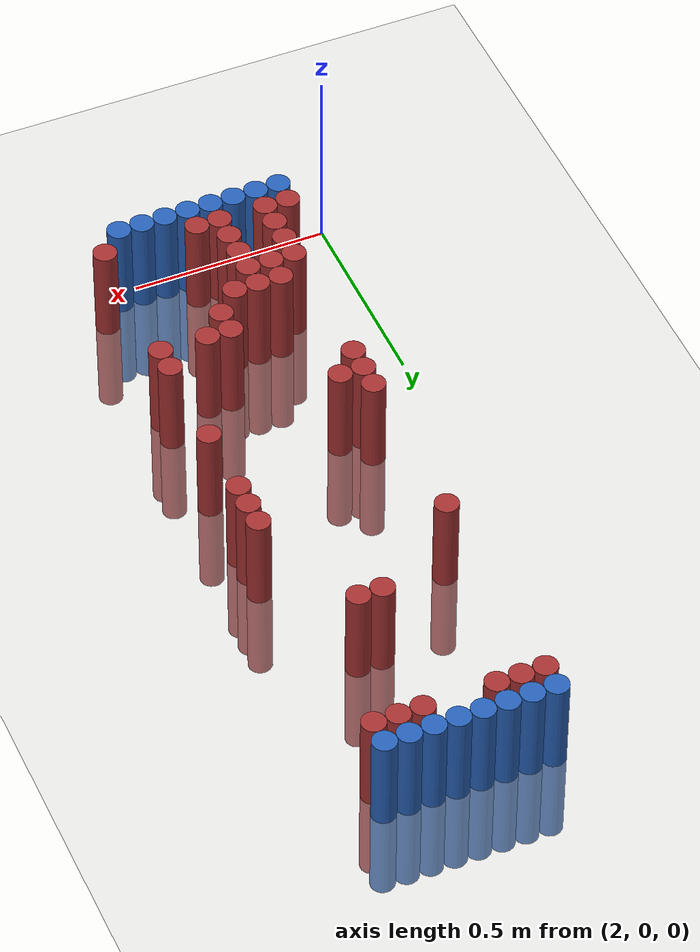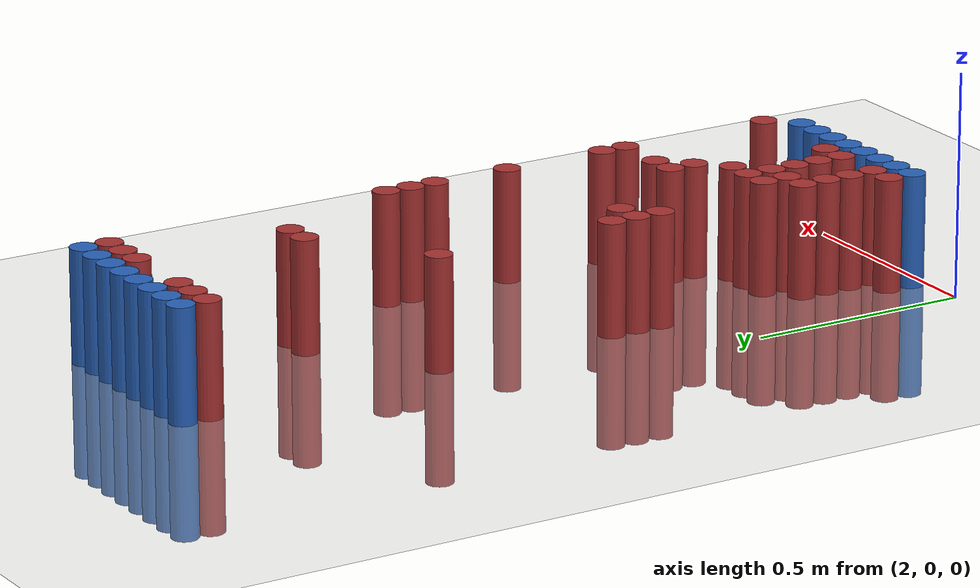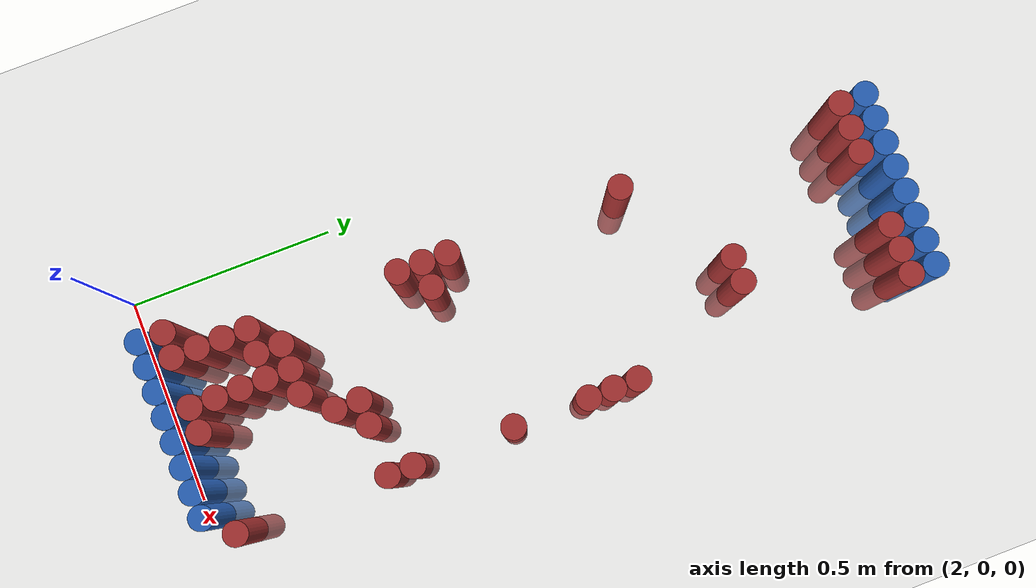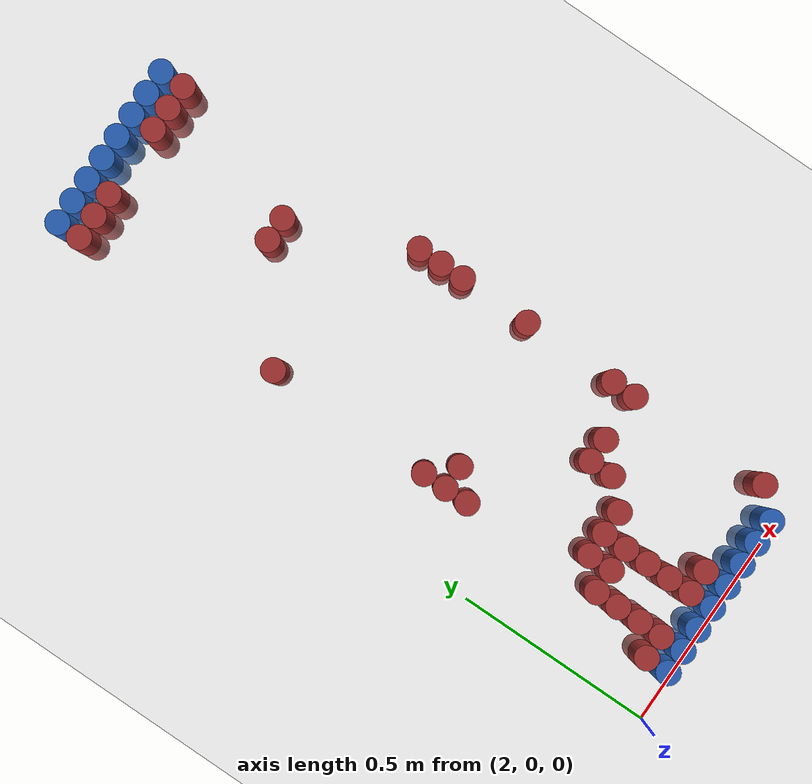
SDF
<sdf version="1.6">
 <world name="default">
  <model name="ground_plane">
   <static>1</static>
   <link name="link">
    <collision name="collision">
     <geometry><plane><normal>0 0 1</normal><size>100 100</size></plane></geometry>
     <surface><friction><ode><mu>100</mu><mu2>50</mu2></ode></friction></surface>
    </collision>
    <visual name="visual">
     <cast_shadows>0</cast_shadows>
     <geometry><plane><normal>0 0 1</normal><size>100 100</size></plane></geometry>
     <material>
      <script><uri>file://media/materials/scripts/gazebo.material</uri><name>Gazebo/Grey</name></script>
     </material>
    </visual>
   </link>
  </model>
  <model name="unit_cylinder_97">
   <static>1</static>
   <pose>2.190000 1.770000 0.000000 0.000000 0.000000 0.000000</pose>
   <link name="link">
    <inertial>
     <mass>1</mass>
     <inertia><ixx>0.145833</ixx><ixy>0</ixy><ixz>0</ixz><iyy>0.145833</iyy><iyz>0</iyz><izz>0.125</izz></inertia>
    </inertial>
    <collision name="collision">
     <geometry><cylinder><radius>0.030000</radius><length>0.5</length></cylinder></geometry>
    </collision>
    <visual name="visual">
     <geometry><cylinder><radius>0.030000</radius><length>0.5</length></cylinder></geometry>
     <material>
      <ambient>0.152000 0.379000 0.720000 1</ambient>
      <diffuse>0.152000 0.379000 0.720000 1</diffuse>
     </material>
     <material>
      <script><name>Gazebo/Grey</name><uri>file://media/materials/scripts/gazebo.material</uri></script>
     </material>
    </visual>
   </link>
  </model>
  <model name="unit_cylinder_98">
   <static>1</static>
   <pose>2.250000 1.770000 0.000000 0.000000 0.000000 0.000000</pose>
   <link name="link">
    <inertial>
     <mass>1</mass>
     <inertia><ixx>0.145833</ixx><ixy>0</ixy><ixz>0</ixz><iyy>0.145833</iyy><iyz>0</iyz><izz>0.125</izz></inertia>
    </inertial>
    <collision name="collision">
     <geometry><cylinder><radius>0.030000</radius><length>0.5</length></cylinder></geometry>
    </collision>
    <visual name="visual">
     <geometry><cylinder><radius>0.030000</radius><length>0.5</length></cylinder></geometry>
     <material>
      <ambient>0.152000 0.379000 0.720000 1</ambient>
      <diffuse>0.152000 0.379000 0.720000 1</diffuse>
     </material>
     <material>
      <script><name>Gazebo/Grey</name><uri>file://media/materials/scripts/gazebo.material</uri></script>
     </material>
    </visual>
   </link>
  </model>
  <model name="unit_cylinder_99">
   <static>1</static>
   <pose>2.310000 1.770000 0.000000 0.000000 0.000000 0.000000</pose>
   <link name="link">
    <inertial>
     <mass>1</mass>
     <inertia><ixx>0.145833</ixx><ixy>0</ixy><ixz>0</ixz><iyy>0.145833</iyy><iyz>0</iyz><izz>0.125</izz></inertia>
    </inertial>
    <collision name="collision">
     <geometry><cylinder><radius>0.030000</radius><length>0.5</length></cylinder></geometry>
    </collision>
    <visual name="visual">
     <geometry><cylinder><radius>0.030000</radius><length>0.5</length></cylinder></geometry>
     <material>
      <ambient>0.152000 0.379000 0.720000 1</ambient>
      <diffuse>0.152000 0.379000 0.720000 1</diffuse>
     </material>
     <material>
      <script><name>Gazebo/Grey</name><uri>file://media/materials/scripts/gazebo.material</uri></script>
     </material>
    </visual>
   </link>
  </model>
  <model name="unit_cylinder_100">
   <static>1</static>
   <pose>2.370000 1.770000 0.000000 0.000000 0.000000 0.000000</pose>
   <link name="link">
    <inertial>
     <mass>1</mass>
     <inertia><ixx>0.145833</ixx><ixy>0</ixy><ixz>0</ixz><iyy>0.145833</iyy><iyz>0</iyz><izz>0.125</izz></inertia>
    </inertial>
    <collision name="collision">
     <geometry><cylinder><radius>0.030000</radius><length>0.5</length></cylinder></geometry>
    </collision>
    <visual name="visual">
     <geometry><cylinder><radius>0.030000</radius><length>0.5</length></cylinder></geometry>
     <material>
      <ambient>0.152000 0.379000 0.720000 1</ambient>
      <diffuse>0.152000 0.379000 0.720000 1</diffuse>
     </material>
     <material>
      <script><name>Gazebo/Grey</name><uri>file://media/materials/scripts/gazebo.material</uri></script>
     </material>
    </visual>
   </link>
  </model>
  <model name="unit_cylinder_101">
   <static>1</static>
   <pose>2.430000 1.770000 0.000000 0.000000 0.000000 0.000000</pose>
   <link name="link">
    <inertial>
     <mass>1</mass>
     <inertia><ixx>0.145833</ixx><ixy>0</ixy><ixz>0</ixz><iyy>0.145833</iyy><iyz>0</iyz><izz>0.125</izz></inertia>
    </inertial>
    <collision name="collision">
     <geometry><cylinder><radius>0.030000</radius><length>0.5</length></cylinder></geometry>
    </collision>
    <visual name="visual">
     <geometry><cylinder><radius>0.030000</radius><length>0.5</length></cylinder></geometry>
     <material>
      <ambient>0.152000 0.379000 0.720000 1</ambient>
      <diffuse>0.152000 0.379000 0.720000 1</diffuse>
     </material>
     <material>
      <script><name>Gazebo/Grey</name><uri>file://media/materials/scripts/gazebo.material</uri></script>
     </material>
    </visual>
   </link>
  </model>
  <model name="unit_cylinder_102">
   <static>1</static>
   <pose>2.490000 1.770000 0.000000 0.000000 0.000000 0.000000</pose>
   <link name="link">
    <inertial>
     <mass>1</mass>
     <inertia><ixx>0.145833</ixx><ixy>0</ixy><ixz>0</ixz><iyy>0.145833</iyy><iyz>0</iyz><izz>0.125</izz></inertia>
    </inertial>
    <collision name="collision">
     <geometry><cylinder><radius>0.030000</radius><length>0.5</length></cylinder></geometry>
    </collision>
    <visual name="visual">
     <geometry><cylinder><radius>0.030000</radius><length>0.5</length></cylinder></geometry>
     <material>
      <ambient>0.152000 0.379000 0.720000 1</ambient>
      <diffuse>0.152000 0.379000 0.720000 1</diffuse>
     </material>
     <material>
      <script><name>Gazebo/Grey</name><uri>file://media/materials/scripts/gazebo.material</uri></script>
     </material>
    </visual>
   </link>
  </model>
  <model name="unit_cylinder_103">
   <static>1</static>
   <pose>2.550000 1.770000 0.000000 0.000000 0.000000 0.000000</pose>
   <link name="link">
    <inertial>
     <mass>1</mass>
     <inertia><ixx>0.145833</ixx><ixy>0</ixy><ixz>0</ixz><iyy>0.145833</iyy><iyz>0</iyz><izz>0.125</izz></inertia>
    </inertial>
    <collision name="collision">
     <geometry><cylinder><radius>0.030000</radius><length>0.5</length></cylinder></geometry>
    </collision>
    <visual name="visual">
     <geometry><cylinder><radius>0.030000</radius><length>0.5</length></cylinder></geometry>
     <material>
      <ambient>0.152000 0.379000 0.720000 1</ambient>
      <diffuse>0.152000 0.379000 0.720000 1</diffuse>
     </material>
     <material>
      <script><name>Gazebo/Grey</name><uri>file://media/materials/scripts/gazebo.material</uri></script>
     </material>
    </visual>
   </link>
  </model>
  <model name="unit_cylinder_104">
   <static>1</static>
   <pose>2.610000 1.770000 0.000000 0.000000 0.000000 0.000000</pose>
   <link name="link">
    <inertial>
     <mass>1</mass>
     <inertia><ixx>0.145833</ixx><ixy>0</ixy><ixz>0</ixz><iyy>0.145833</iyy><iyz>0</iyz><izz>0.125</izz></inertia>
    </inertial>
    <collision name="collision">
     <geometry><cylinder><radius>0.030000</radius><length>0.5</length></cylinder></geometry>
    </collision>
    <visual name="visual">
     <geometry><cylinder><radius>0.030000</radius><length>0.5</length></cylinder></geometry>
     <material>
      <ambient>0.152000 0.379000 0.720000 1</ambient>
      <diffuse>0.152000 0.379000 0.720000 1</diffuse>
     </material>
     <material>
      <script><name>Gazebo/Grey</name><uri>file://media/materials/scripts/gazebo.material</uri></script>
     </material>
    </visual>
   </link>
  </model>
  <model name="unit_cylinder_126">
   <static>1</static>
   <pose>2.190000 1.710000 0.000000 0.000000 0.000000 0.000000</pose>
   <link name="link">
    <inertial>
     <mass>1</mass>
     <inertia><ixx>0.145833</ixx><ixy>0</ixy><ixz>0</ixz><iyy>0.145833</iyy><iyz>0</iyz><izz>0.125</izz></inertia>
    </inertial>
    <collision name="collision">
     <geometry><cylinder><radius>0.030000</radius><length>0.5</length></cylinder></geometry>
    </collision>
    <visual name="visual">
     <geometry><cylinder><radius>0.030000</radius><length>0.5</length></cylinder></geometry>
     <material>
      <ambient>0.648000 0.192000 0.192000 1</ambient>
      <diffuse>0.648000 0.192000 0.192000 1</diffuse>
     </material>
     <material>
      <script><name>Gazebo/Grey</name><uri>file://media/materials/scripts/gazebo.material</uri></script>
     </material>
    </visual>
   </link>
  </model>
  <model name="unit_cylinder_127">
   <static>1</static>
   <pose>2.250000 1.710000 0.000000 0.000000 0.000000 0.000000</pose>
   <link name="link">
    <inertial>
     <mass>1</mass>
     <inertia><ixx>0.145833</ixx><ixy>0</ixy><ixz>0</ixz><iyy>0.145833</iyy><iyz>0</iyz><izz>0.125</izz></inertia>
    </inertial>
    <collision name="collision">
     <geometry><cylinder><radius>0.030000</radius><length>0.5</length></cylinder></geometry>
    </collision>
    <visual name="visual">
     <geometry><cylinder><radius>0.030000</radius><length>0.5</length></cylinder></geometry>
     <material>
      <ambient>0.648000 0.192000 0.192000 1</ambient>
      <diffuse>0.648000 0.192000 0.192000 1</diffuse>
     </material>
     <material>
      <script><name>Gazebo/Grey</name><uri>file://media/materials/scripts/gazebo.material</uri></script>
     </material>
    </visual>
   </link>
  </model>
  <model name="unit_cylinder_128">
   <static>1</static>
   <pose>2.310000 1.710000 0.000000 0.000000 0.000000 0.000000</pose>
   <link name="link">
    <inertial>
     <mass>1</mass>
     <inertia><ixx>0.145833</ixx><ixy>0</ixy><ixz>0</ixz><iyy>0.145833</iyy><iyz>0</iyz><izz>0.125</izz></inertia>
    </inertial>
    <collision name="collision">
     <geometry><cylinder><radius>0.030000</radius><length>0.5</length></cylinder></geometry>
    </collision>
    <visual name="visual">
     <geometry><cylinder><radius>0.030000</radius><length>0.5</length></cylinder></geometry>
     <material>
      <ambient>0.648000 0.192000 0.192000 1</ambient>
      <diffuse>0.648000 0.192000 0.192000 1</diffuse>
     </material>
     <material>
      <script><name>Gazebo/Grey</name><uri>file://media/materials/scripts/gazebo.material</uri></script>
     </material>
    </visual>
   </link>
  </model>
  <model name="unit_cylinder_129">
   <static>1</static>
   <pose>2.490000 1.710000 0.000000 0.000000 0.000000 0.000000</pose>
   <link name="link">
    <inertial>
     <mass>1</mass>
     <inertia><ixx>0.145833</ixx><ixy>0</ixy><ixz>0</ixz><iyy>0.145833</iyy><iyz>0</iyz><izz>0.125</izz></inertia>
    </inertial>
    <collision name="collision">
     <geometry><cylinder><radius>0.030000</radius><length>0.5</length></cylinder></geometry>
    </collision>
    <visual name="visual">
     <geometry><cylinder><radius>0.030000</radius><length>0.5</length></cylinder></geometry>
     <material>
      <ambient>0.648000 0.192000 0.192000 1</ambient>
      <diffuse>0.648000 0.192000 0.192000 1</diffuse>
     </material>
     <material>
      <script><name>Gazebo/Grey</name><uri>file://media/materials/scripts/gazebo.material</uri></script>
     </material>
    </visual>
   </link>
  </model>
  <model name="unit_cylinder_130">
   <static>1</static>
   <pose>2.550000 1.710000 0.000000 0.000000 0.000000 0.000000</pose>
   <link name="link">
    <inertial>
     <mass>1</mass>
     <inertia><ixx>0.145833</ixx><ixy>0</ixy><ixz>0</ixz><iyy>0.145833</iyy><iyz>0</iyz><izz>0.125</izz></inertia>
    </inertial>
    <collision name="collision">
     <geometry><cylinder><radius>0.030000</radius><length>0.5</length></cylinder></geometry>
    </collision>
    <visual name="visual">
     <geometry><cylinder><radius>0.030000</radius><length>0.5</length></cylinder></geometry>
     <material>
      <ambient>0.648000 0.192000 0.192000 1</ambient>
      <diffuse>0.648000 0.192000 0.192000 1</diffuse>
     </material>
     <material>
      <script><name>Gazebo/Grey</name><uri>file://media/materials/scripts/gazebo.material</uri></script>
     </material>
    </visual>
   </link>
  </model>
  <model name="unit_cylinder_131">
   <static>1</static>
   <pose>2.610000 1.710000 0.000000 0.000000 0.000000 0.000000</pose>
   <link name="link">
    <inertial>
     <mass>1</mass>
     <inertia><ixx>0.145833</ixx><ixy>0</ixy><ixz>0</ixz><iyy>0.145833</iyy><iyz>0</iyz><izz>0.125</izz></inertia>
    </inertial>
    <collision name="collision">
     <geometry><cylinder><radius>0.030000</radius><length>0.5</length></cylinder></geometry>
    </collision>
    <visual name="visual">
     <geometry><cylinder><radius>0.030000</radius><length>0.5</length></cylinder></geometry>
     <material>
      <ambient>0.648000 0.192000 0.192000 1</ambient>
      <diffuse>0.648000 0.192000 0.192000 1</diffuse>
     </material>
     <material>
      <script><name>Gazebo/Grey</name><uri>file://media/materials/scripts/gazebo.material</uri></script>
     </material>
    </visual>
   </link>
  </model>
  <model name="unit_cylinder_149">
   <static>1</static>
   <pose>2.430000 1.350000 0.000000 0.000000 0.000000 0.000000</pose>
   <link name="link">
    <inertial>
     <mass>1</mass>
     <inertia><ixx>0.145833</ixx><ixy>0</ixy><ixz>0</ixz><iyy>0.145833</iyy><iyz>0</iyz><izz>0.125</izz></inertia>
    </inertial>
    <collision name="collision">
     <geometry><cylinder><radius>0.030000</radius><length>0.5</length></cylinder></geometry>
    </collision>
    <visual name="visual">
     <geometry><cylinder><radius>0.030000</radius><length>0.5</length></cylinder></geometry>
     <material>
      <ambient>0.648000 0.192000 0.192000 1</ambient>
      <diffuse>0.648000 0.192000 0.192000 1</diffuse>
     </material>
     <material>
      <script><name>Gazebo/Grey</name><uri>file://media/materials/scripts/gazebo.material</uri></script>
     </material>
    </visual>
   </link>
  </model>
  <model name="unit_cylinder_150">
   <static>1</static>
   <pose>2.490000 1.350000 0.000000 0.000000 0.000000 0.000000</pose>
   <link name="link">
    <inertial>
     <mass>1</mass>
     <inertia><ixx>0.145833</ixx><ixy>0</ixy><ixz>0</ixz><iyy>0.145833</iyy><iyz>0</iyz><izz>0.125</izz></inertia>
    </inertial>
    <collision name="collision">
     <geometry><cylinder><radius>0.030000</radius><length>0.5</length></cylinder></geometry>
    </collision>
    <visual name="visual">
     <geometry><cylinder><radius>0.030000</radius><length>0.5</length></cylinder></geometry>
     <material>
      <ambient>0.648000 0.192000 0.192000 1</ambient>
      <diffuse>0.648000 0.192000 0.192000 1</diffuse>
     </material>
     <material>
      <script><name>Gazebo/Grey</name><uri>file://media/materials/scripts/gazebo.material</uri></script>
     </material>
    </visual>
   </link>
  </model>
  <model name="unit_cylinder_157">
   <static>1</static>
   <pose>2.190000 1.170000 0.000000 0.000000 0.000000 0.000000</pose>
   <link name="link">
    <inertial>
     <mass>1</mass>
     <inertia><ixx>0.145833</ixx><ixy>0</ixy><ixz>0</ixz><iyy>0.145833</iyy><iyz>0</iyz><izz>0.125</izz></inertia>
    </inertial>
    <collision name="collision">
     <geometry><cylinder><radius>0.030000</radius><length>0.5</length></cylinder></geometry>
    </collision>
    <visual name="visual">
     <geometry><cylinder><radius>0.030000</radius><length>0.5</length></cylinder></geometry>
     <material>
      <ambient>0.648000 0.192000 0.192000 1</ambient>
      <diffuse>0.648000 0.192000 0.192000 1</diffuse>
     </material>
     <material>
      <script><name>Gazebo/Grey</name><uri>file://media/materials/scripts/gazebo.material</uri></script>
     </material>
    </visual>
   </link>
  </model>
  <model name="unit_cylinder_164">
   <static>1</static>
   <pose>2.610000 1.050000 0.000000 0.000000 0.000000 0.000000</pose>
   <link name="link">
    <inertial>
     <mass>1</mass>
     <inertia><ixx>0.145833</ixx><ixy>0</ixy><ixz>0</ixz><iyy>0.145833</iyy><iyz>0</iyz><izz>0.125</izz></inertia>
    </inertial>
    <collision name="collision">
     <geometry><cylinder><radius>0.030000</radius><length>0.5</length></cylinder></geometry>
    </collision>
    <visual name="visual">
     <geometry><cylinder><radius>0.030000</radius><length>0.5</length></cylinder></geometry>
     <material>
      <ambient>0.648000 0.192000 0.192000 1</ambient>
      <diffuse>0.648000 0.192000 0.192000 1</diffuse>
     </material>
     <material>
      <script><name>Gazebo/Grey</name><uri>file://media/materials/scripts/gazebo.material</uri></script>
     </material>
    </visual>
   </link>
  </model>
  <model name="unit_cylinder_168">
   <static>1</static>
   <pose>2.610000 0.990000 0.000000 0.000000 0.000000 0.000000</pose>
   <link name="link">
    <inertial>
     <mass>1</mass>
     <inertia><ixx>0.145833</ixx><ixy>0</ixy><ixz>0</ixz><iyy>0.145833</iyy><iyz>0</iyz><izz>0.125</izz></inertia>
    </inertial>
    <collision name="collision">
     <geometry><cylinder><radius>0.030000</radius><length>0.5</length></cylinder></geometry>
    </collision>
    <visual name="visual">
     <geometry><cylinder><radius>0.030000</radius><length>0.5</length></cylinder></geometry>
     <material>
      <ambient>0.648000 0.192000 0.192000 1</ambient>
      <diffuse>0.648000 0.192000 0.192000 1</diffuse>
     </material>
     <material>
      <script><name>Gazebo/Grey</name><uri>file://media/materials/scripts/gazebo.material</uri></script>
     </material>
    </visual>
   </link>
  </model>
  <model name="unit_cylinder_172">
   <static>1</static>
   <pose>2.610000 0.930000 0.000000 0.000000 0.000000 0.000000</pose>
   <link name="link">
    <inertial>
     <mass>1</mass>
     <inertia><ixx>0.145833</ixx><ixy>0</ixy><ixz>0</ixz><iyy>0.145833</iyy><iyz>0</iyz><izz>0.125</izz></inertia>
    </inertial>
    <collision name="collision">
     <geometry><cylinder><radius>0.030000</radius><length>0.5</length></cylinder></geometry>
    </collision>
    <visual name="visual">
     <geometry><cylinder><radius>0.030000</radius><length>0.5</length></cylinder></geometry>
     <material>
      <ambient>0.648000 0.192000 0.192000 1</ambient>
      <diffuse>0.648000 0.192000 0.192000 1</diffuse>
     </material>
     <material>
      <script><name>Gazebo/Grey</name><uri>file://media/materials/scripts/gazebo.material</uri></script>
     </material>
    </visual>
   </link>
  </model>
  <model name="unit_cylinder_191">
   <static>1</static>
   <pose>2.190000 0.750000 0.000000 0.000000 0.000000 0.000000</pose>
   <link name="link">
    <inertial>
     <mass>1</mass>
     <inertia><ixx>0.145833</ixx><ixy>0</ixy><ixz>0</ixz><iyy>0.145833</iyy><iyz>0</iyz><izz>0.125</izz></inertia>
    </inertial>
    <collision name="collision">
     <geometry><cylinder><radius>0.030000</radius><length>0.5</length></cylinder></geometry>
    </collision>
    <visual name="visual">
     <geometry><cylinder><radius>0.030000</radius><length>0.5</length></cylinder></geometry>
     <material>
      <ambient>0.648000 0.192000 0.192000 1</ambient>
      <diffuse>0.648000 0.192000 0.192000 1</diffuse>
     </material>
     <material>
      <script><name>Gazebo/Grey</name><uri>file://media/materials/scripts/gazebo.material</uri></script>
     </material>
    </visual>
   </link>
  </model>
  <model name="unit_cylinder_192">
   <static>1</static>
   <pose>2.610000 0.750000 0.000000 0.000000 0.000000 0.000000</pose>
   <link name="link">
    <inertial>
     <mass>1</mass>
     <inertia><ixx>0.145833</ixx><ixy>0</ixy><ixz>0</ixz><iyy>0.145833</iyy><iyz>0</iyz><izz>0.125</izz></inertia>
    </inertial>
    <collision name="collision">
     <geometry><cylinder><radius>0.030000</radius><length>0.5</length></cylinder></geometry>
    </collision>
    <visual name="visual">
     <geometry><cylinder><radius>0.030000</radius><length>0.5</length></cylinder></geometry>
     <material>
      <ambient>0.648000 0.192000 0.192000 1</ambient>
      <diffuse>0.648000 0.192000 0.192000 1</diffuse>
     </material>
     <material>
      <script><name>Gazebo/Grey</name><uri>file://media/materials/scripts/gazebo.material</uri></script>
     </material>
    </visual>
   </link>
  </model>
  <model name="unit_cylinder_198">
   <static>1</static>
   <pose>2.190000 0.690000 0.000000 0.000000 0.000000 0.000000</pose>
   <link name="link">
    <inertial>
     <mass>1</mass>
     <inertia><ixx>0.145833</ixx><ixy>0</ixy><ixz>0</ixz><iyy>0.145833</iyy><iyz>0</iyz><izz>0.125</izz></inertia>
    </inertial>
    <collision name="collision">
     <geometry><cylinder><radius>0.030000</radius><length>0.5</length></cylinder></geometry>
    </collision>
    <visual name="visual">
     <geometry><cylinder><radius>0.030000</radius><length>0.5</length></cylinder></geometry>
     <material>
      <ambient>0.648000 0.192000 0.192000 1</ambient>
      <diffuse>0.648000 0.192000 0.192000 1</diffuse>
     </material>
     <material>
      <script><name>Gazebo/Grey</name><uri>file://media/materials/scripts/gazebo.material</uri></script>
     </material>
    </visual>
   </link>
  </model>
  <model name="unit_cylinder_199">
   <static>1</static>
   <pose>2.250000 0.690000 0.000000 0.000000 0.000000 0.000000</pose>
   <link name="link">
    <inertial>
     <mass>1</mass>
     <inertia><ixx>0.145833</ixx><ixy>0</ixy><ixz>0</ixz><iyy>0.145833</iyy><iyz>0</iyz><izz>0.125</izz></inertia>
    </inertial>
    <collision name="collision">
     <geometry><cylinder><radius>0.030000</radius><length>0.5</length></cylinder></geometry>
    </collision>
    <visual name="visual">
     <geometry><cylinder><radius>0.030000</radius><length>0.5</length></cylinder></geometry>
     <material>
      <ambient>0.648000 0.192000 0.192000 1</ambient>
      <diffuse>0.648000 0.192000 0.192000 1</diffuse>
     </material>
     <material>
      <script><name>Gazebo/Grey</name><uri>file://media/materials/scripts/gazebo.material</uri></script>
     </material>
    </visual>
   </link>
  </model>
  <model name="unit_cylinder_206">
   <static>1</static>
   <pose>2.190000 0.630000 0.000000 0.000000 0.000000 0.000000</pose>
   <link name="link">
    <inertial>
     <mass>1</mass>
     <inertia><ixx>0.145833</ixx><ixy>0</ixy><ixz>0</ixz><iyy>0.145833</iyy><iyz>0</iyz><izz>0.125</izz></inertia>
    </inertial>
    <collision name="collision">
     <geometry><cylinder><radius>0.030000</radius><length>0.5</length></cylinder></geometry>
    </collision>
    <visual name="visual">
     <geometry><cylinder><radius>0.030000</radius><length>0.5</length></cylinder></geometry>
     <material>
      <ambient>0.648000 0.192000 0.192000 1</ambient>
      <diffuse>0.648000 0.192000 0.192000 1</diffuse>
     </material>
     <material>
      <script><name>Gazebo/Grey</name><uri>file://media/materials/scripts/gazebo.material</uri></script>
     </material>
    </visual>
   </link>
  </model>
  <model name="unit_cylinder_214">
   <static>1</static>
   <pose>2.610000 0.510000 0.000000 0.000000 0.000000 0.000000</pose>
   <link name="link">
    <inertial>
     <mass>1</mass>
     <inertia><ixx>0.145833</ixx><ixy>0</ixy><ixz>0</ixz><iyy>0.145833</iyy><iyz>0</iyz><izz>0.125</izz></inertia>
    </inertial>
    <collision name="collision">
     <geometry><cylinder><radius>0.030000</radius><length>0.5</length></cylinder></geometry>
    </collision>
    <visual name="visual">
     <geometry><cylinder><radius>0.030000</radius><length>0.5</length></cylinder></geometry>
     <material>
      <ambient>0.648000 0.192000 0.192000 1</ambient>
      <diffuse>0.648000 0.192000 0.192000 1</diffuse>
     </material>
     <material>
      <script><name>Gazebo/Grey</name><uri>file://media/materials/scripts/gazebo.material</uri></script>
     </material>
    </visual>
   </link>
  </model>
  <model name="unit_cylinder_220">
   <static>1</static>
   <pose>2.430000 0.450000 0.000000 0.000000 0.000000 0.000000</pose>
   <link name="link">
    <inertial>
     <mass>1</mass>
     <inertia><ixx>0.145833</ixx><ixy>0</ixy><ixz>0</ixz><iyy>0.145833</iyy><iyz>0</iyz><izz>0.125</izz></inertia>
    </inertial>
    <collision name="collision">
     <geometry><cylinder><radius>0.030000</radius><length>0.5</length></cylinder></geometry>
    </collision>
    <visual name="visual">
     <geometry><cylinder><radius>0.030000</radius><length>0.5</length></cylinder></geometry>
     <material>
      <ambient>0.648000 0.192000 0.192000 1</ambient>
      <diffuse>0.648000 0.192000 0.192000 1</diffuse>
     </material>
     <material>
      <script><name>Gazebo/Grey</name><uri>file://media/materials/scripts/gazebo.material</uri></script>
     </material>
    </visual>
   </link>
  </model>
  <model name="unit_cylinder_221">
   <static>1</static>
   <pose>2.490000 0.450000 0.000000 0.000000 0.000000 0.000000</pose>
   <link name="link">
    <inertial>
     <mass>1</mass>
     <inertia><ixx>0.145833</ixx><ixy>0</ixy><ixz>0</ixz><iyy>0.145833</iyy><iyz>0</iyz><izz>0.125</izz></inertia>
    </inertial>
    <collision name="collision">
     <geometry><cylinder><radius>0.030000</radius><length>0.5</length></cylinder></geometry>
    </collision>
    <visual name="visual">
     <geometry><cylinder><radius>0.030000</radius><length>0.5</length></cylinder></geometry>
     <material>
      <ambient>0.648000 0.192000 0.192000 1</ambient>
      <diffuse>0.648000 0.192000 0.192000 1</diffuse>
     </material>
     <material>
      <script><name>Gazebo/Grey</name><uri>file://media/materials/scripts/gazebo.material</uri></script>
     </material>
    </visual>
   </link>
  </model>
  <model name="unit_cylinder_222">
   <static>1</static>
   <pose>2.610000 0.450000 0.000000 0.000000 0.000000 0.000000</pose>
   <link name="link">
    <inertial>
     <mass>1</mass>
     <inertia><ixx>0.145833</ixx><ixy>0</ixy><ixz>0</ixz><iyy>0.145833</iyy><iyz>0</iyz><izz>0.125</izz></inertia>
    </inertial>
    <collision name="collision">
     <geometry><cylinder><radius>0.030000</radius><length>0.5</length></cylinder></geometry>
    </collision>
    <visual name="visual">
     <geometry><cylinder><radius>0.030000</radius><length>0.5</length></cylinder></geometry>
     <material>
      <ambient>0.648000 0.192000 0.192000 1</ambient>
      <diffuse>0.648000 0.192000 0.192000 1</diffuse>
     </material>
     <material>
      <script><name>Gazebo/Grey</name><uri>file://media/materials/scripts/gazebo.material</uri></script>
     </material>
    </visual>
   </link>
  </model>
  <model name="unit_cylinder_232">
   <static>1</static>
   <pose>2.430000 0.390000 0.000000 0.000000 0.000000 0.000000</pose>
   <link name="link">
    <inertial>
     <mass>1</mass>
     <inertia><ixx>0.145833</ixx><ixy>0</ixy><ixz>0</ixz><iyy>0.145833</iyy><iyz>0</iyz><izz>0.125</izz></inertia>
    </inertial>
    <collision name="collision">
     <geometry><cylinder><radius>0.030000</radius><length>0.5</length></cylinder></geometry>
    </collision>
    <visual name="visual">
     <geometry><cylinder><radius>0.030000</radius><length>0.5</length></cylinder></geometry>
     <material>
      <ambient>0.648000 0.192000 0.192000 1</ambient>
      <diffuse>0.648000 0.192000 0.192000 1</diffuse>
     </material>
     <material>
      <script><name>Gazebo/Grey</name><uri>file://media/materials/scripts/gazebo.material</uri></script>
     </material>
    </visual>
   </link>
  </model>
  <model name="unit_cylinder_240">
   <static>1</static>
   <pose>2.250000 0.330000 0.000000 0.000000 0.000000 0.000000</pose>
   <link name="link">
    <inertial>
     <mass>1</mass>
     <inertia><ixx>0.145833</ixx><ixy>0</ixy><ixz>0</ixz><iyy>0.145833</iyy><iyz>0</iyz><izz>0.125</izz></inertia>
    </inertial>
    <collision name="collision">
     <geometry><cylinder><radius>0.030000</radius><length>0.5</length></cylinder></geometry>
    </collision>
    <visual name="visual">
     <geometry><cylinder><radius>0.030000</radius><length>0.5</length></cylinder></geometry>
     <material>
      <ambient>0.648000 0.192000 0.192000 1</ambient>
      <diffuse>0.648000 0.192000 0.192000 1</diffuse>
     </material>
     <material>
      <script><name>Gazebo/Grey</name><uri>file://media/materials/scripts/gazebo.material</uri></script>
     </material>
    </visual>
   </link>
  </model>
  <model name="unit_cylinder_241">
   <static>1</static>
   <pose>2.310000 0.330000 0.000000 0.000000 0.000000 0.000000</pose>
   <link name="link">
    <inertial>
     <mass>1</mass>
     <inertia><ixx>0.145833</ixx><ixy>0</ixy><ixz>0</ixz><iyy>0.145833</iyy><iyz>0</iyz><izz>0.125</izz></inertia>
    </inertial>
    <collision name="collision">
     <geometry><cylinder><radius>0.030000</radius><length>0.5</length></cylinder></geometry>
    </collision>
    <visual name="visual">
     <geometry><cylinder><radius>0.030000</radius><length>0.5</length></cylinder></geometry>
     <material>
      <ambient>0.648000 0.192000 0.192000 1</ambient>
      <diffuse>0.648000 0.192000 0.192000 1</diffuse>
     </material>
     <material>
      <script><name>Gazebo/Grey</name><uri>file://media/materials/scripts/gazebo.material</uri></script>
     </material>
    </visual>
   </link>
  </model>
  <model name="unit_cylinder_242">
   <static>1</static>
   <pose>2.370000 0.330000 0.000000 0.000000 0.000000 0.000000</pose>
   <link name="link">
    <inertial>
     <mass>1</mass>
     <inertia><ixx>0.145833</ixx><ixy>0</ixy><ixz>0</ixz><iyy>0.145833</iyy><iyz>0</iyz><izz>0.125</izz></inertia>
    </inertial>
    <collision name="collision">
     <geometry><cylinder><radius>0.030000</radius><length>0.5</length></cylinder></geometry>
    </collision>
    <visual name="visual">
     <geometry><cylinder><radius>0.030000</radius><length>0.5</length></cylinder></geometry>
     <material>
      <ambient>0.648000 0.192000 0.192000 1</ambient>
      <diffuse>0.648000 0.192000 0.192000 1</diffuse>
     </material>
     <material>
      <script><name>Gazebo/Grey</name><uri>file://media/materials/scripts/gazebo.material</uri></script>
     </material>
    </visual>
   </link>
  </model>
  <model name="unit_cylinder_247">
   <static>1</static>
   <pose>2.190000 0.270000 0.000000 0.000000 0.000000 0.000000</pose>
   <link name="link">
    <inertial>
     <mass>1</mass>
     <inertia><ixx>0.145833</ixx><ixy>0</ixy><ixz>0</ixz><iyy>0.145833</iyy><iyz>0</iyz><izz>0.125</izz></inertia>
    </inertial>
    <collision name="collision">
     <geometry><cylinder><radius>0.030000</radius><length>0.5</length></cylinder></geometry>
    </collision>
    <visual name="visual">
     <geometry><cylinder><radius>0.030000</radius><length>0.5</length></cylinder></geometry>
     <material>
      <ambient>0.648000 0.192000 0.192000 1</ambient>
      <diffuse>0.648000 0.192000 0.192000 1</diffuse>
     </material>
     <material>
      <script><name>Gazebo/Grey</name><uri>file://media/materials/scripts/gazebo.material</uri></script>
     </material>
    </visual>
   </link>
  </model>
  <model name="unit_cylinder_248">
   <static>1</static>
   <pose>2.250000 0.270000 0.000000 0.000000 0.000000 0.000000</pose>
   <link name="link">
    <inertial>
     <mass>1</mass>
     <inertia><ixx>0.145833</ixx><ixy>0</ixy><ixz>0</ixz><iyy>0.145833</iyy><iyz>0</iyz><izz>0.125</izz></inertia>
    </inertial>
    <collision name="collision">
     <geometry><cylinder><radius>0.030000</radius><length>0.5</length></cylinder></geometry>
    </collision>
    <visual name="visual">
     <geometry><cylinder><radius>0.030000</radius><length>0.5</length></cylinder></geometry>
     <material>
      <ambient>0.648000 0.192000 0.192000 1</ambient>
      <diffuse>0.648000 0.192000 0.192000 1</diffuse>
     </material>
     <material>
      <script><name>Gazebo/Grey</name><uri>file://media/materials/scripts/gazebo.material</uri></script>
     </material>
    </visual>
   </link>
  </model>
  <model name="unit_cylinder_249">
   <static>1</static>
   <pose>2.310000 0.270000 0.000000 0.000000 0.000000 0.000000</pose>
   <link name="link">
    <inertial>
     <mass>1</mass>
     <inertia><ixx>0.145833</ixx><ixy>0</ixy><ixz>0</ixz><iyy>0.145833</iyy><iyz>0</iyz><izz>0.125</izz></inertia>
    </inertial>
    <collision name="collision">
     <geometry><cylinder><radius>0.030000</radius><length>0.5</length></cylinder></geometry>
    </collision>
    <visual name="visual">
     <geometry><cylinder><radius>0.030000</radius><length>0.5</length></cylinder></geometry>
     <material>
      <ambient>0.648000 0.192000 0.192000 1</ambient>
      <diffuse>0.648000 0.192000 0.192000 1</diffuse>
     </material>
     <material>
      <script><name>Gazebo/Grey</name><uri>file://media/materials/scripts/gazebo.material</uri></script>
     </material>
    </visual>
   </link>
  </model>
  <model name="unit_cylinder_255">
   <static>1</static>
   <pose>2.190000 0.210000 0.000000 0.000000 0.000000 0.000000</pose>
   <link name="link">
    <inertial>
     <mass>1</mass>
     <inertia><ixx>0.145833</ixx><ixy>0</ixy><ixz>0</ixz><iyy>0.145833</iyy><iyz>0</iyz><izz>0.125</izz></inertia>
    </inertial>
    <collision name="collision">
     <geometry><cylinder><radius>0.030000</radius><length>0.5</length></cylinder></geometry>
    </collision>
    <visual name="visual">
     <geometry><cylinder><radius>0.030000</radius><length>0.5</length></cylinder></geometry>
     <material>
      <ambient>0.648000 0.192000 0.192000 1</ambient>
      <diffuse>0.648000 0.192000 0.192000 1</diffuse>
     </material>
     <material>
      <script><name>Gazebo/Grey</name><uri>file://media/materials/scripts/gazebo.material</uri></script>
     </material>
    </visual>
   </link>
  </model>
  <model name="unit_cylinder_256">
   <static>1</static>
   <pose>2.310000 0.210000 0.000000 0.000000 0.000000 0.000000</pose>
   <link name="link">
    <inertial>
     <mass>1</mass>
     <inertia><ixx>0.145833</ixx><ixy>0</ixy><ixz>0</ixz><iyy>0.145833</iyy><iyz>0</iyz><izz>0.125</izz></inertia>
    </inertial>
    <collision name="collision">
     <geometry><cylinder><radius>0.030000</radius><length>0.5</length></cylinder></geometry>
    </collision>
    <visual name="visual">
     <geometry><cylinder><radius>0.030000</radius><length>0.5</length></cylinder></geometry>
     <material>
      <ambient>0.648000 0.192000 0.192000 1</ambient>
      <diffuse>0.648000 0.192000 0.192000 1</diffuse>
     </material>
     <material>
      <script><name>Gazebo/Grey</name><uri>file://media/materials/scripts/gazebo.material</uri></script>
     </material>
    </visual>
   </link>
  </model>
  <model name="unit_cylinder_262">
   <static>1</static>
   <pose>2.190000 0.150000 0.000000 0.000000 0.000000 0.000000</pose>
   <link name="link">
    <inertial>
     <mass>1</mass>
     <inertia><ixx>0.145833</ixx><ixy>0</ixy><ixz>0</ixz><iyy>0.145833</iyy><iyz>0</iyz><izz>0.125</izz></inertia>
    </inertial>
    <collision name="collision">
     <geometry><cylinder><radius>0.030000</radius><length>0.5</length></cylinder></geometry>
    </collision>
    <visual name="visual">
     <geometry><cylinder><radius>0.030000</radius><length>0.5</length></cylinder></geometry>
     <material>
      <ambient>0.648000 0.192000 0.192000 1</ambient>
      <diffuse>0.648000 0.192000 0.192000 1</diffuse>
     </material>
     <material>
      <script><name>Gazebo/Grey</name><uri>file://media/materials/scripts/gazebo.material</uri></script>
     </material>
    </visual>
   </link>
  </model>
  <model name="unit_cylinder_263">
   <static>1</static>
   <pose>2.310000 0.150000 0.000000 0.000000 0.000000 0.000000</pose>
   <link name="link">
    <inertial>
     <mass>1</mass>
     <inertia><ixx>0.145833</ixx><ixy>0</ixy><ixz>0</ixz><iyy>0.145833</iyy><iyz>0</iyz><izz>0.125</izz></inertia>
    </inertial>
    <collision name="collision">
     <geometry><cylinder><radius>0.030000</radius><length>0.5</length></cylinder></geometry>
    </collision>
    <visual name="visual">
     <geometry><cylinder><radius>0.030000</radius><length>0.5</length></cylinder></geometry>
     <material>
      <ambient>0.648000 0.192000 0.192000 1</ambient>
      <diffuse>0.648000 0.192000 0.192000 1</diffuse>
     </material>
     <material>
      <script><name>Gazebo/Grey</name><uri>file://media/materials/scripts/gazebo.material</uri></script>
     </material>
    </visual>
   </link>
  </model>
  <model name="unit_cylinder_270">
   <static>1</static>
   <pose>2.130000 0.090000 0.000000 0.000000 0.000000 0.000000</pose>
   <link name="link">
    <inertial>
     <mass>1</mass>
     <inertia><ixx>0.145833</ixx><ixy>0</ixy><ixz>0</ixz><iyy>0.145833</iyy><iyz>0</iyz><izz>0.125</izz></inertia>
    </inertial>
    <collision name="collision">
     <geometry><cylinder><radius>0.030000</radius><length>0.5</length></cylinder></geometry>
    </collision>
    <visual name="visual">
     <geometry><cylinder><radius>0.030000</radius><length>0.5</length></cylinder></geometry>
     <material>
      <ambient>0.648000 0.192000 0.192000 1</ambient>
      <diffuse>0.648000 0.192000 0.192000 1</diffuse>
     </material>
     <material>
      <script><name>Gazebo/Grey</name><uri>file://media/materials/scripts/gazebo.material</uri></script>
     </material>
    </visual>
   </link>
  </model>
  <model name="unit_cylinder_271">
   <static>1</static>
   <pose>2.190000 0.090000 0.000000 0.000000 0.000000 0.000000</pose>
   <link name="link">
    <inertial>
     <mass>1</mass>
     <inertia><ixx>0.145833</ixx><ixy>0</ixy><ixz>0</ixz><iyy>0.145833</iyy><iyz>0</iyz><izz>0.125</izz></inertia>
    </inertial>
    <collision name="collision">
     <geometry><cylinder><radius>0.030000</radius><length>0.5</length></cylinder></geometry>
    </collision>
    <visual name="visual">
     <geometry><cylinder><radius>0.030000</radius><length>0.5</length></cylinder></geometry>
     <material>
      <ambient>0.648000 0.192000 0.192000 1</ambient>
      <diffuse>0.648000 0.192000 0.192000 1</diffuse>
     </material>
     <material>
      <script><name>Gazebo/Grey</name><uri>file://media/materials/scripts/gazebo.material</uri></script>
     </material>
    </visual>
   </link>
  </model>
  <model name="unit_cylinder_272">
   <static>1</static>
   <pose>2.310000 0.090000 0.000000 0.000000 0.000000 0.000000</pose>
   <link name="link">
    <inertial>
     <mass>1</mass>
     <inertia><ixx>0.145833</ixx><ixy>0</ixy><ixz>0</ixz><iyy>0.145833</iyy><iyz>0</iyz><izz>0.125</izz></inertia>
    </inertial>
    <collision name="collision">
     <geometry><cylinder><radius>0.030000</radius><length>0.5</length></cylinder></geometry>
    </collision>
    <visual name="visual">
     <geometry><cylinder><radius>0.030000</radius><length>0.5</length></cylinder></geometry>
     <material>
      <ambient>0.648000 0.192000 0.192000 1</ambient>
      <diffuse>0.648000 0.192000 0.192000 1</diffuse>
     </material>
     <material>
      <script><name>Gazebo/Grey</name><uri>file://media/materials/scripts/gazebo.material</uri></script>
     </material>
    </visual>
   </link>
  </model>
  <model name="unit_cylinder_273">
   <static>1</static>
   <pose>2.370000 0.090000 0.000000 0.000000 0.000000 0.000000</pose>
   <link name="link">
    <inertial>
     <mass>1</mass>
     <inertia><ixx>0.145833</ixx><ixy>0</ixy><ixz>0</ixz><iyy>0.145833</iyy><iyz>0</iyz><izz>0.125</izz></inertia>
    </inertial>
    <collision name="collision">
     <geometry><cylinder><radius>0.030000</radius><length>0.5</length></cylinder></geometry>
    </collision>
    <visual name="visual">
     <geometry><cylinder><radius>0.030000</radius><length>0.5</length></cylinder></geometry>
     <material>
      <ambient>0.648000 0.192000 0.192000 1</ambient>
      <diffuse>0.648000 0.192000 0.192000 1</diffuse>
     </material>
     <material>
      <script><name>Gazebo/Grey</name><uri>file://media/materials/scripts/gazebo.material</uri></script>
     </material>
    </visual>
   </link>
  </model>
  <model name="unit_cylinder_274">
   <static>1</static>
   <pose>2.610000 0.090000 0.000000 0.000000 0.000000 0.000000</pose>
   <link name="link">
    <inertial>
     <mass>1</mass>
     <inertia><ixx>0.145833</ixx><ixy>0</ixy><ixz>0</ixz><iyy>0.145833</iyy><iyz>0</iyz><izz>0.125</izz></inertia>
    </inertial>
    <collision name="collision">
     <geometry><cylinder><radius>0.030000</radius><length>0.5</length></cylinder></geometry>
    </collision>
    <visual name="visual">
     <geometry><cylinder><radius>0.030000</radius><length>0.5</length></cylinder></geometry>
     <material>
      <ambient>0.648000 0.192000 0.192000 1</ambient>
      <diffuse>0.648000 0.192000 0.192000 1</diffuse>
     </material>
     <material>
      <script><name>Gazebo/Grey</name><uri>file://media/materials/scripts/gazebo.material</uri></script>
     </material>
    </visual>
   </link>
  </model>
  <model name="unit_cylinder_288">
   <static>1</static>
   <pose>2.130000 0.030000 0.000000 0.000000 0.000000 0.000000</pose>
   <link name="link">
    <inertial>
     <mass>1</mass>
     <inertia><ixx>0.145833</ixx><ixy>0</ixy><ixz>0</ixz><iyy>0.145833</iyy><iyz>0</iyz><izz>0.125</izz></inertia>
    </inertial>
    <collision name="collision">
     <geometry><cylinder><radius>0.030000</radius><length>0.5</length></cylinder></geometry>
    </collision>
    <visual name="visual">
     <geometry><cylinder><radius>0.030000</radius><length>0.5</length></cylinder></geometry>
     <material>
      <ambient>0.152000 0.379000 0.720000 1</ambient>
      <diffuse>0.152000 0.379000 0.720000 1</diffuse>
     </material>
     <material>
      <script><name>Gazebo/Grey</name><uri>file://media/materials/scripts/gazebo.material</uri></script>
     </material>
    </visual>
   </link>
  </model>
  <model name="unit_cylinder_289">
   <static>1</static>
   <pose>2.190000 0.030000 0.000000 0.000000 0.000000 0.000000</pose>
   <link name="link">
    <inertial>
     <mass>1</mass>
     <inertia><ixx>0.145833</ixx><ixy>0</ixy><ixz>0</ixz><iyy>0.145833</iyy><iyz>0</iyz><izz>0.125</izz></inertia>
    </inertial>
    <collision name="collision">
     <geometry><cylinder><radius>0.030000</radius><length>0.5</length></cylinder></geometry>
    </collision>
    <visual name="visual">
     <geometry><cylinder><radius>0.030000</radius><length>0.5</length></cylinder></geometry>
     <material>
      <ambient>0.152000 0.379000 0.720000 1</ambient>
      <diffuse>0.152000 0.379000 0.720000 1</diffuse>
     </material>
     <material>
      <script><name>Gazebo/Grey</name><uri>file://media/materials/scripts/gazebo.material</uri></script>
     </material>
    </visual>
   </link>
  </model>
  <model name="unit_cylinder_290">
   <static>1</static>
   <pose>2.250000 0.030000 0.000000 0.000000 0.000000 0.000000</pose>
   <link name="link">
    <inertial>
     <mass>1</mass>
     <inertia><ixx>0.145833</ixx><ixy>0</ixy><ixz>0</ixz><iyy>0.145833</iyy><iyz>0</iyz><izz>0.125</izz></inertia>
    </inertial>
    <collision name="collision">
     <geometry><cylinder><radius>0.030000</radius><length>0.5</length></cylinder></geometry>
    </collision>
    <visual name="visual">
     <geometry><cylinder><radius>0.030000</radius><length>0.5</length></cylinder></geometry>
     <material>
      <ambient>0.152000 0.379000 0.720000 1</ambient>
      <diffuse>0.152000 0.379000 0.720000 1</diffuse>
     </material>
     <material>
      <script><name>Gazebo/Grey</name><uri>file://media/materials/scripts/gazebo.material</uri></script>
     </material>
    </visual>
   </link>
  </model>
  <model name="unit_cylinder_291">
   <static>1</static>
   <pose>2.310000 0.030000 0.000000 0.000000 0.000000 0.000000</pose>
   <link name="link">
    <inertial>
     <mass>1</mass>
     <inertia><ixx>0.145833</ixx><ixy>0</ixy><ixz>0</ixz><iyy>0.145833</iyy><iyz>0</iyz><izz>0.125</izz></inertia>
    </inertial>
    <collision name="collision">
     <geometry><cylinder><radius>0.030000</radius><length>0.5</length></cylinder></geometry>
    </collision>
    <visual name="visual">
     <geometry><cylinder><radius>0.030000</radius><length>0.5</length></cylinder></geometry>
     <material>
      <ambient>0.152000 0.379000 0.720000 1</ambient>
      <diffuse>0.152000 0.379000 0.720000 1</diffuse>
     </material>
     <material>
      <script><name>Gazebo/Grey</name><uri>file://media/materials/scripts/gazebo.material</uri></script>
     </material>
    </visual>
   </link>
  </model>
  <model name="unit_cylinder_292">
   <static>1</static>
   <pose>2.370000 0.030000 0.000000 0.000000 0.000000 0.000000</pose>
   <link name="link">
    <inertial>
     <mass>1</mass>
     <inertia><ixx>0.145833</ixx><ixy>0</ixy><ixz>0</ixz><iyy>0.145833</iyy><iyz>0</iyz><izz>0.125</izz></inertia>
    </inertial>
    <collision name="collision">
     <geometry><cylinder><radius>0.030000</radius><length>0.5</length></cylinder></geometry>
    </collision>
    <visual name="visual">
     <geometry><cylinder><radius>0.030000</radius><length>0.5</length></cylinder></geometry>
     <material>
      <ambient>0.152000 0.379000 0.720000 1</ambient>
      <diffuse>0.152000 0.379000 0.720000 1</diffuse>
     </material>
     <material>
      <script><name>Gazebo/Grey</name><uri>file://media/materials/scripts/gazebo.material</uri></script>
     </material>
    </visual>
   </link>
  </model>
  <model name="unit_cylinder_293">
   <static>1</static>
   <pose>2.430000 0.030000 0.000000 0.000000 0.000000 0.000000</pose>
   <link name="link">
    <inertial>
     <mass>1</mass>
     <inertia><ixx>0.145833</ixx><ixy>0</ixy><ixz>0</ixz><iyy>0.145833</iyy><iyz>0</iyz><izz>0.125</izz></inertia>
    </inertial>
    <collision name="collision">
     <geometry><cylinder><radius>0.030000</radius><length>0.5</length></cylinder></geometry>
    </collision>
    <visual name="visual">
     <geometry><cylinder><radius>0.030000</radius><length>0.5</length></cylinder></geometry>
     <material>
      <ambient>0.152000 0.379000 0.720000 1</ambient>
      <diffuse>0.152000 0.379000 0.720000 1</diffuse>
     </material>
     <material>
      <script><name>Gazebo/Grey</name><uri>file://media/materials/scripts/gazebo.material</uri></script>
     </material>
    </visual>
   </link>
  </model>
  <model name="unit_cylinder_294">
   <static>1</static>
   <pose>2.490000 0.030000 0.000000 0.000000 0.000000 0.000000</pose>
   <link name="link">
    <inertial>
     <mass>1</mass>
     <inertia><ixx>0.145833</ixx><ixy>0</ixy><ixz>0</ixz><iyy>0.145833</iyy><iyz>0</iyz><izz>0.125</izz></inertia>
    </inertial>
    <collision name="collision">
     <geometry><cylinder><radius>0.030000</radius><length>0.5</length></cylinder></geometry>
    </collision>
    <visual name="visual">
     <geometry><cylinder><radius>0.030000</radius><length>0.5</length></cylinder></geometry>
     <material>
      <ambient>0.152000 0.379000 0.720000 1</ambient>
      <diffuse>0.152000 0.379000 0.720000 1</diffuse>
     </material>
     <material>
      <script><name>Gazebo/Grey</name><uri>file://media/materials/scripts/gazebo.material</uri></script>
     </material>
    </visual>
   </link>
  </model>
  <model name="unit_cylinder_295">
   <static>1</static>
   <pose>2.550000 0.030000 0.000000 0.000000 0.000000 0.000000</pose>
   <link name="link">
    <inertial>
     <mass>1</mass>
     <inertia><ixx>0.145833</ixx><ixy>0</ixy><ixz>0</ixz><iyy>0.145833</iyy><iyz>0</iyz><izz>0.125</izz></inertia>
    </inertial>
    <collision name="collision">
     <geometry><cylinder><radius>0.030000</radius><length>0.5</length></cylinder></geometry>
    </collision>
    <visual name="visual">
     <geometry><cylinder><radius>0.030000</radius><length>0.5</length></cylinder></geometry>
     <material>
      <ambient>0.152000 0.379000 0.720000 1</ambient>
      <diffuse>0.152000 0.379000 0.720000 1</diffuse>
     </material>
     <material>
      <script><name>Gazebo/Grey</name><uri>file://media/materials/scripts/gazebo.material</uri></script>
     </material>
    </visual>
   </link>
  </model>
 </world>
</sdf>
